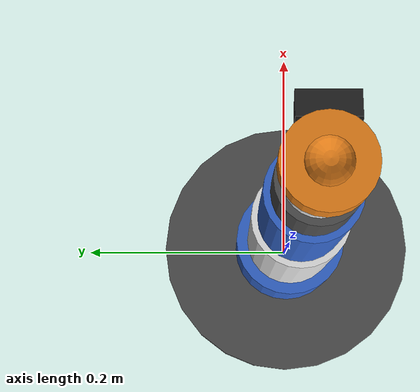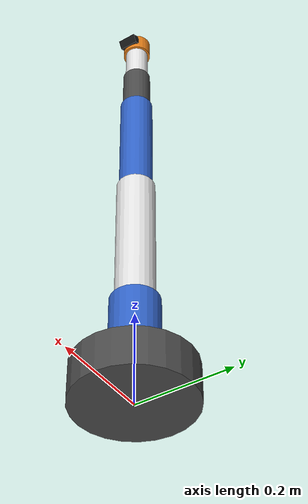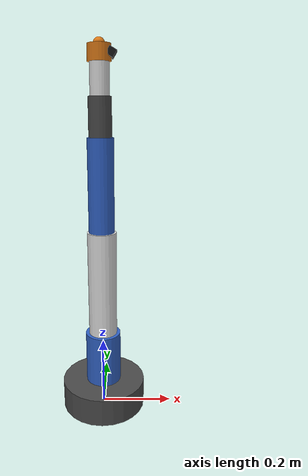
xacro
<?xml version="1.0"?>
<robot xmlns:xacro="http://www.ros.org/wiki/xacro" name="space_arm">

  <!-- Include modular components -->
  <xacro:include filename="$(find space_arm_description)/urdf/materials.xacro"/>
  <xacro:include filename="$(find space_arm_description)/urdf/arm_macros.xacro"/>
  <xacro:include filename="$(find space_arm_description)/urdf/camera.xacro"/>
  <xacro:include filename="$(find space_arm_description)/urdf/gazebo.xacro"/>

  <!-- ================= Parameters ================= -->
  <xacro:property name="base_mass" value="10.0"/>
  <xacro:property name="link_mass" value="2.0"/>
  <xacro:property name="joint_effort" value="100.0"/>
  <xacro:property name="joint_velocity" value="1.0"/>

  <!-- ================= World Link ================= -->
  <!-- In space, the base is typically fixed to a spacecraft -->
  <link name="world"/>

  <joint name="fixed_base_joint" type="fixed">
    <parent link="world"/>
    <child link="base_link"/>
    <origin xyz="0 0 0" rpy="0 0 0"/>
  </joint>

  <!-- ================= Base Link ================= -->
  <link name="base_link">
    <visual>
      <geometry>
        <cylinder radius="0.12" length="0.08"/>
      </geometry>
      <origin xyz="0 0 0.04" rpy="0 0 0"/>
      <material name="dark_grey"/>
    </visual>
    <collision>
      <geometry>
        <cylinder radius="0.12" length="0.08"/>
      </geometry>
      <origin xyz="0 0 0.04" rpy="0 0 0"/>
    </collision>
    <inertial>
      <mass value="${base_mass}"/>
      <origin xyz="0 0 0.04" rpy="0 0 0"/>
      <inertia ixx="0.04" ixy="0" ixz="0" iyy="0.04" iyz="0" izz="0.07"/>
    </inertial>
  </link>

  <!-- ================= Arm Links via Macro ================= -->
  <!-- Joint 1: Base rotation (yaw) -->
  <xacro:arm_joint name="joint_1" parent="base_link" child="link_1"
    origin_xyz="0 0 0.08" origin_rpy="0 0 0"
    axis="0 0 1" lower="${-pi}" upper="${pi}"
    effort="${joint_effort}" velocity="${joint_velocity}"/>
  <xacro:arm_link name="link_1" length="0.15" radius="0.05" mass="${link_mass}"
    origin_xyz="0 0 0.075" color="blue"/>

  <!-- Joint 2: Shoulder pitch -->
  <xacro:arm_joint name="joint_2" parent="link_1" child="link_2"
    origin_xyz="0 0 0.15" origin_rpy="0 0 0"
    axis="0 1 0" lower="${-pi/2}" upper="${pi/2}"
    effort="${joint_effort}" velocity="${joint_velocity}"/>
  <xacro:arm_link name="link_2" length="0.30" radius="0.04" mass="${link_mass}"
    origin_xyz="0 0 0.15" color="white"/>

  <!-- Joint 3: Elbow pitch -->
  <xacro:arm_joint name="joint_3" parent="link_2" child="link_3"
    origin_xyz="0 0 0.30" origin_rpy="0 0 0"
    axis="0 1 0" lower="${-pi*0.75}" upper="${pi*0.75}"
    effort="${joint_effort}" velocity="${joint_velocity}"/>
  <xacro:arm_link name="link_3" length="0.25" radius="0.035" mass="${link_mass * 0.8}"
    origin_xyz="0 0 0.125" color="blue"/>

  <!-- Joint 4: Wrist roll -->
  <xacro:arm_joint name="joint_4" parent="link_3" child="link_4"
    origin_xyz="0 0 0.25" origin_rpy="0 0 0"
    axis="1 0 0" lower="${-pi}" upper="${pi}"
    effort="${joint_effort * 0.5}" velocity="${joint_velocity * 1.5}"/>
  <xacro:arm_link name="link_4" length="0.10" radius="0.03" mass="${link_mass * 0.5}"
    origin_xyz="0 0 0.05" color="dark_grey"/>

  <!-- Joint 5: Wrist pitch -->
  <xacro:arm_joint name="joint_5" parent="link_4" child="link_5"
    origin_xyz="0 0 0.10" origin_rpy="0 0 0"
    axis="0 1 0" lower="${-pi/2}" upper="${pi/2}"
    effort="${joint_effort * 0.5}" velocity="${joint_velocity * 1.5}"/>
  <xacro:arm_link name="link_5" length="0.08" radius="0.025" mass="${link_mass * 0.4}"
    origin_xyz="0 0 0.04" color="white"/>

  <!-- Joint 6: End-effector rotation -->
  <xacro:arm_joint name="joint_6" parent="link_5" child="link_6"
    origin_xyz="0 0 0.08" origin_rpy="0 0 0"
    axis="0 0 1" lower="${-pi}" upper="${pi}"
    effort="${joint_effort * 0.3}" velocity="${joint_velocity * 2.0}"/>
  <xacro:arm_link name="link_6" length="0.04" radius="0.03" mass="${link_mass * 0.3}"
    origin_xyz="0 0 0.02" color="orange"/>

  <!-- ================= End Effector ================= -->
  <joint name="ee_fixed_joint" type="fixed">
    <parent link="link_6"/>
    <child link="ee_link"/>
    <origin xyz="0 0 0.04" rpy="0 0 0"/>
  </joint>

  <link name="ee_link">
    <visual>
      <geometry>
        <sphere radius="0.015"/>
      </geometry>
      <material name="orange"/>
    </visual>
    <inertial>
      <mass value="0.05"/>
      <inertia ixx="0.000001" ixy="0" ixz="0" iyy="0.000001" iyz="0" izz="0.000001"/>
    </inertial>
  </link>

  <!-- ================= Camera on End Effector ================= -->
  <xacro:ee_camera parent="link_6"
    camera_xyz="0.03 0 0.02" camera_rpy="0 ${pi/6} 0"
    image_width="640" image_height="480" update_rate="30"/>

  <!-- ================= ros2_control ================= -->
  <ros2_control name="space_arm_control" type="system">
    <hardware>
      <plugin>gazebo_ros2_control/GazeboSystem</plugin>
    </hardware>
    <joint name="joint_1">
      <command_interface name="effort"/>
      <state_interface name="position"/>
      <state_interface name="velocity"/>
      <state_interface name="effort"/>
    </joint>
    <joint name="joint_2">
      <command_interface name="effort"/>
      <state_interface name="position"/>
      <state_interface name="velocity"/>
      <state_interface name="effort"/>
    </joint>
    <joint name="joint_3">
      <command_interface name="effort"/>
      <state_interface name="position"/>
      <state_interface name="velocity"/>
      <state_interface name="effort"/>
    </joint>
    <joint name="joint_4">
      <command_interface name="effort"/>
      <state_interface name="position"/>
      <state_interface name="velocity"/>
      <state_interface name="effort"/>
    </joint>
    <joint name="joint_5">
      <command_interface name="effort"/>
      <state_interface name="position"/>
      <state_interface name="velocity"/>
      <state_interface name="effort"/>
    </joint>
    <joint name="joint_6">
      <command_interface name="effort"/>
      <state_interface name="position"/>
      <state_interface name="velocity"/>
      <state_interface name="effort"/>
    </joint>
  </ros2_control>

</robot>

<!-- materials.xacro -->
<robot xmlns:xacro="http://www.ros.org/wiki/xacro">

  <material name="white">
    <color rgba="0.9 0.9 0.9 1.0"/>
  </material>

  <material name="dark_grey">
    <color rgba="0.3 0.3 0.3 1.0"/>
  </material>

  <material name="blue">
    <color rgba="0.2 0.4 0.8 1.0"/>
  </material>

  <material name="orange">
    <color rgba="0.9 0.5 0.1 1.0"/>
  </material>

  <material name="black">
    <color rgba="0.1 0.1 0.1 1.0"/>
  </material>

</robot>

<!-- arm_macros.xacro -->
<robot xmlns:xacro="http://www.ros.org/wiki/xacro">

  <!-- Macro for cylindrical arm links -->
  <xacro:macro name="arm_link" params="name length radius mass origin_xyz color">
    <link name="${name}">
      <visual>
        <geometry>
          <cylinder radius="${radius}" length="${length}"/>
        </geometry>
        <origin xyz="${origin_xyz}" rpy="0 0 0"/>
        <material name="${color}"/>
      </visual>
      <collision>
        <geometry>
          <cylinder radius="${radius}" length="${length}"/>
        </geometry>
        <origin xyz="${origin_xyz}" rpy="0 0 0"/>
      </collision>
      <inertial>
        <mass value="${mass}"/>
        <origin xyz="${origin_xyz}" rpy="0 0 0"/>
        <!-- Cylinder inertia: Ixx=Iyy = m(3r^2+h^2)/12, Izz = mr^2/2 -->
        <inertia
          ixx="${mass * (3*radius*radius + length*length) / 12.0}"
          ixy="0" ixz="0"
          iyy="${mass * (3*radius*radius + length*length) / 12.0}"
          iyz="0"
          izz="${mass * radius * radius / 2.0}"/>
      </inertial>
    </link>
  </xacro:macro>

  <!-- Macro for revolute joints -->
  <xacro:macro name="arm_joint" params="name parent child origin_xyz origin_rpy axis lower upper effort velocity">
    <joint name="${name}" type="revolute">
      <parent link="${parent}"/>
      <child link="${child}"/>
      <origin xyz="${origin_xyz}" rpy="${origin_rpy}"/>
      <axis xyz="${axis}"/>
      <limit lower="${lower}" upper="${upper}" effort="${effort}" velocity="${velocity}"/>
      <dynamics damping="0.1" friction="0.01"/>
    </joint>
  </xacro:macro>

</robot>

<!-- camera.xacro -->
<robot xmlns:xacro="http://www.ros.org/wiki/xacro">

  <!-- End-effector camera macro -->
  <xacro:macro name="ee_camera" params="parent camera_xyz camera_rpy image_width image_height update_rate">

    <!-- Camera mount -->
    <joint name="camera_mount_joint" type="fixed">
      <parent link="${parent}"/>
      <child link="camera_link"/>
      <origin xyz="${camera_xyz}" rpy="${camera_rpy}"/>
    </joint>

    <link name="camera_link">
      <visual>
        <geometry>
          <box size="0.02 0.04 0.02"/>
        </geometry>
        <material name="black"/>
      </visual>
      <collision>
        <geometry>
          <box size="0.02 0.04 0.02"/>
        </geometry>
      </collision>
      <inertial>
        <mass value="0.1"/>
        <inertia ixx="0.00001" ixy="0" ixz="0" iyy="0.00001" iyz="0" izz="0.00001"/>
      </inertial>
    </link>

    <!-- Camera optical frame (Z forward, X right, Y down - standard camera convention) -->
    <joint name="camera_optical_joint" type="fixed">
      <parent link="camera_link"/>
      <child link="camera_optical_frame"/>
      <origin xyz="0 0 0" rpy="${-pi/2} 0 ${-pi/2}"/>
    </joint>

    <link name="camera_optical_frame"/>

    <!-- Gazebo camera sensor -->
    <gazebo reference="camera_link">
      <sensor name="ee_camera" type="camera">
        <always_on>true</always_on>
        <update_rate>${update_rate}</update_rate>
        <visualize>true</visualize>
        <camera>
          <horizontal_fov>1.089</horizontal_fov>
          <image>
            <width>${image_width}</width>
            <height>${image_height}</height>
            <format>R8G8B8</format>
          </image>
          <clip>
            <near>0.05</near>
            <far>50.0</far>
          </clip>
          <noise>
            <type>gaussian</type>
            <mean>0.0</mean>
            <stddev>0.005</stddev>
          </noise>
        </camera>
        <plugin name="camera_controller" filename="libgazebo_ros_camera.so">
          <ros>
            <namespace>/space_arm</namespace>
            <remapping>image_raw:=ee_camera/image_raw</remapping>
            <remapping>camera_info:=ee_camera/camera_info</remapping>
          </ros>
          <camera_name>ee_camera</camera_name>
          <frame_name>camera_optical_frame</frame_name>
        </plugin>
      </sensor>
    </gazebo>

  </xacro:macro>

</robot>
